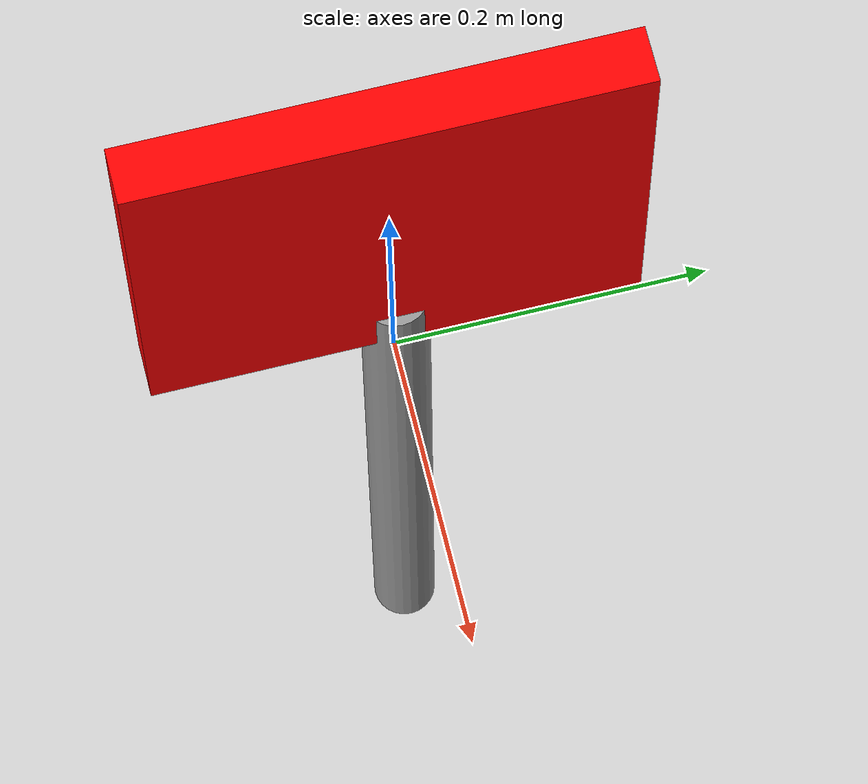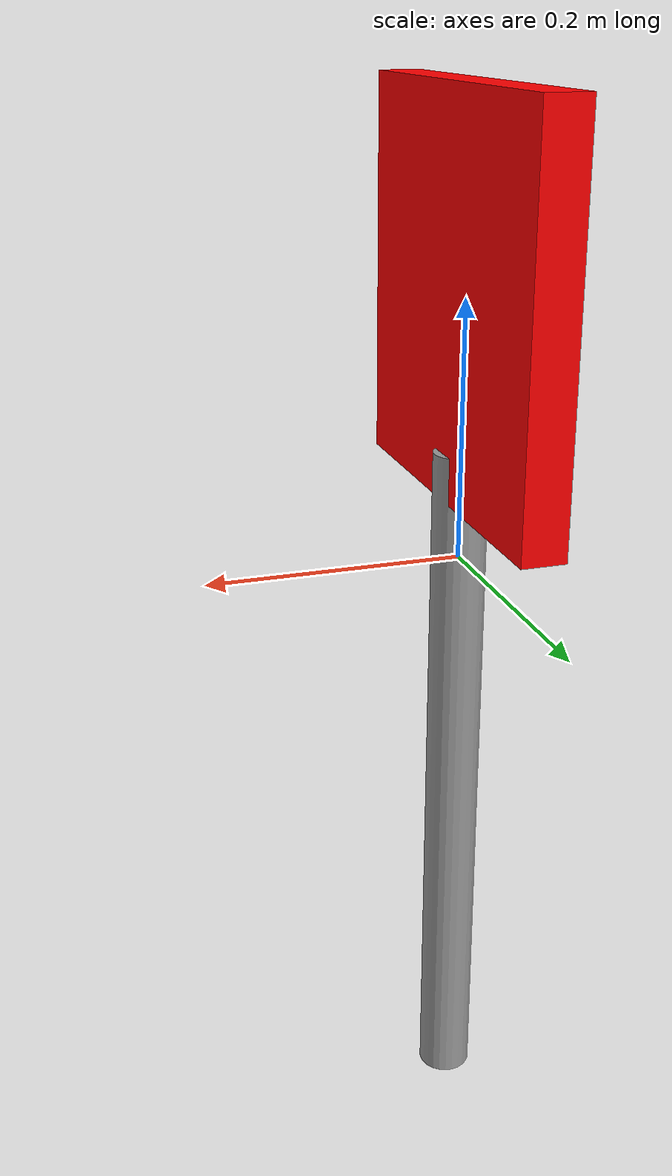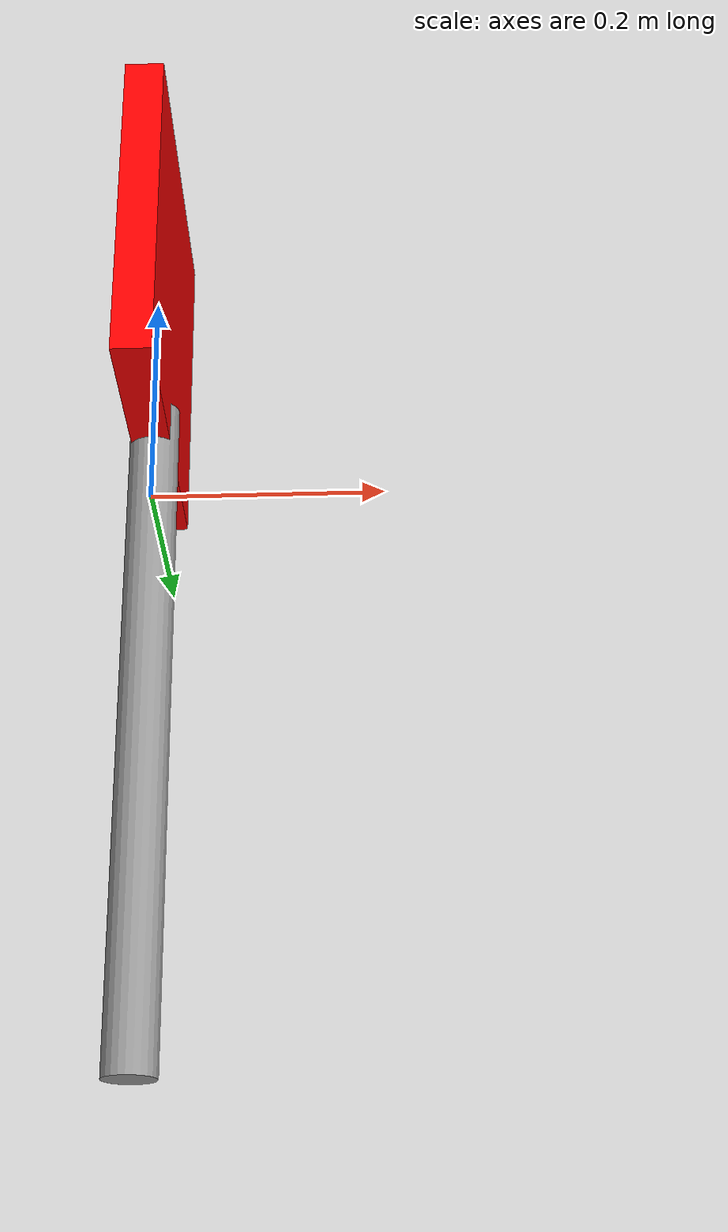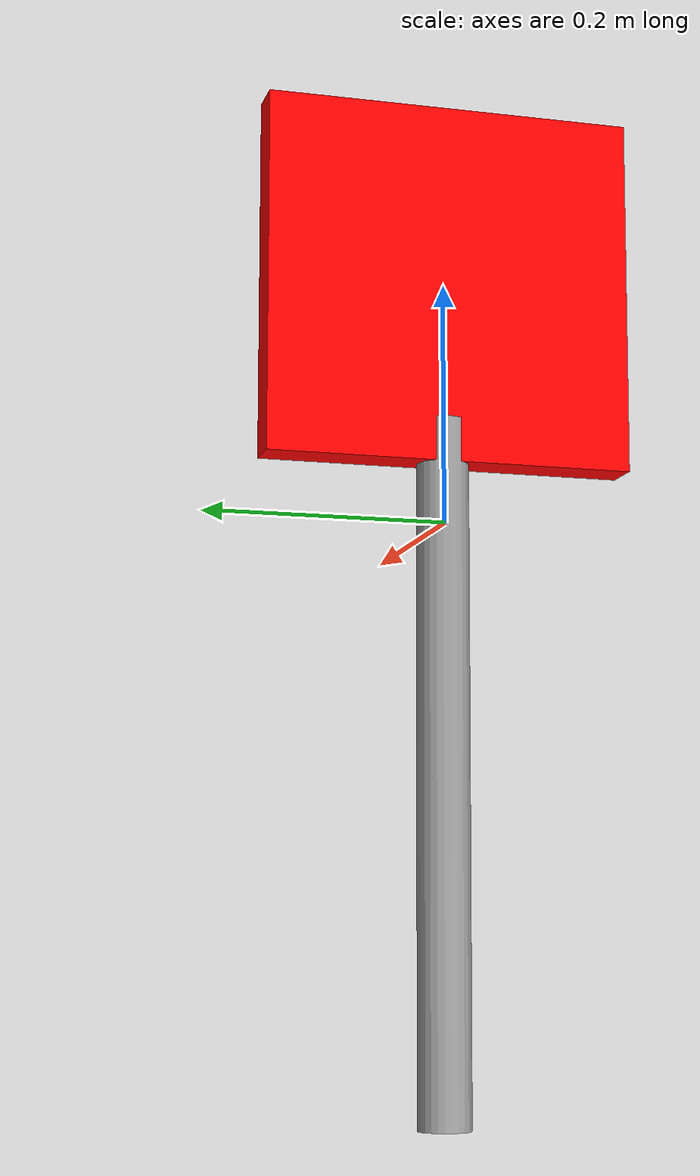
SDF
<?xml version='1.0'?>
<sdf version='1.6'>
  <model name='Stop_Sign'>
    <model name='Untitled'>
      <link name='link_0'>
        <inertial>
          <mass>0.00104194</mass>
          <inertia>
            <ixx>2.80415e-05</ixx>
            <ixy>0</ixy>
            <ixz>0</ixz>
            <iyy>2.80415e-05</iyy>
            <iyz>0</iyz>
            <izz>2.39872e-07</izz>
          </inertia>
          <pose frame=''>0 0 0 0 -0 0</pose>
        </inertial>
        <pose frame=''>0.000872 0.001297 -0.19832 0 -0 0</pose>
        <visual name='visual'>
          <pose frame=''>0 0 0 0 -0 0</pose>
          <geometry>
            <cylinder>
              <radius>0.0214577</radius>
              <length>0.567073</length>
            </cylinder>
          </geometry>
          <material>
            <lighting>1</lighting>
            <script>
              <uri>file://media/materials/scripts/gazebo.material</uri>
              <name>Gazebo/Grey</name>
            </script>
          </material>
          <transparency>0</transparency>
          <cast_shadows>1</cast_shadows>
        </visual>
        <collision name='collision'>
          <laser_retro>0</laser_retro>
          <max_contacts>10</max_contacts>
          <pose frame=''>0 0 0 0 -0 0</pose>
          <geometry>
            <cylinder>
              <radius>0.021458</radius>
              <length>0.567073</length>
            </cylinder>
          </geometry>
          <surface>
            <friction>
              <ode>
                <mu>1</mu>
                <mu2>1</mu2>
                <fdir1>0 0 0</fdir1>
                <slip1>0</slip1>
                <slip2>0</slip2>
              </ode>
              <torsional>
                <coefficient>1</coefficient>
                <patch_radius>0</patch_radius>
                <surface_radius>0</surface_radius>
                <use_patch_radius>1</use_patch_radius>
                <ode>
                  <slip>0</slip>
                </ode>
              </torsional>
            </friction>
            <bounce>
              <restitution_coefficient>0</restitution_coefficient>
              <threshold>1e+06</threshold>
            </bounce>
            <contact>
              <collide_without_contact>0</collide_without_contact>
              <collide_without_contact_bitmask>1</collide_without_contact_bitmask>
              <collide_bitmask>1</collide_bitmask>
              <ode>
                <soft_cfm>0</soft_cfm>
                <soft_erp>0.2</soft_erp>
                <kp>1e+13</kp>
                <kd>1</kd>
                <max_vel>0.01</max_vel>
                <min_depth>0</min_depth>
              </ode>
              <bullet>
                <split_impulse>1</split_impulse>
                <split_impulse_penetration_threshold>-0.01</split_impulse_penetration_threshold>
                <soft_cfm>0</soft_cfm>
                <soft_erp>0.2</soft_erp>
                <kp>1e+13</kp>
                <kd>1</kd>
              </bullet>
            </contact>
          </surface>
        </collision>
      </link>
      <link name='link_1'>
        <inertial>
          <mass>0.00313174</mass>
          <inertia>
            <ixx>4.796e-05</ixx>
            <ixy>0</ixy>
            <ixz>0</ixz>
            <iyy>2.372e-05</iyy>
            <iyz>0</iyz>
            <izz>2.485e-05</izz>
          </inertia>
          <pose frame=''>0 0 0 0 -0 0</pose>
        </inertial>
        <pose frame=''>-0.000876 -0.001297 0.19832 0 -0 0</pose>
        <gravity>1</gravity>
        <self_collide>0</self_collide>
        <kinematic>0</kinematic>
        <enable_wind>0</enable_wind>
        <visual name='visual'>
          <pose frame=''>0 0 0 0 -0 0</pose>
          <geometry>
            <box>
              <size>0.034001 0.306689 0.299524</size>
            </box>
          </geometry>
          <material>
            <lighting>1</lighting>
            <script>
              <uri>file://media/materials/scripts/gazebo.material</uri>
              <name>Gazebo/Grey</name>
            </script>
            <ambient>1 0 0 0</ambient>
            <shader type='vertex'>
              <normal_map>__default__</normal_map>
            </shader>
            <diffuse>0.7 0.7 0.7 1</diffuse>
            <specular>0.01 0.01 0.01 1</specular>
            <emissive>0 0 0 1</emissive>
          </material>
          <transparency>0</transparency>
          <cast_shadows>1</cast_shadows>
        </visual>
        <collision name='collision'>
          <laser_retro>0</laser_retro>
          <max_contacts>10</max_contacts>
          <pose frame=''>0 0 0 0 -0 0</pose>
          <geometry>
            <box>
              <size>0.034001 0.306689 0.299524</size>
            </box>
          </geometry>
          <surface>
            <friction>
              <ode>
                <mu>1</mu>
                <mu2>1</mu2>
                <fdir1>0 0 0</fdir1>
                <slip1>0</slip1>
                <slip2>0</slip2>
              </ode>
              <torsional>
                <coefficient>1</coefficient>
                <patch_radius>0</patch_radius>
                <surface_radius>0</surface_radius>
                <use_patch_radius>1</use_patch_radius>
                <ode>
                  <slip>0</slip>
                </ode>
              </torsional>
            </friction>
            <bounce>
              <restitution_coefficient>0</restitution_coefficient>
              <threshold>1e+06</threshold>
            </bounce>
            <contact>
              <collide_without_contact>0</collide_without_contact>
              <collide_without_contact_bitmask>1</collide_without_contact_bitmask>
              <collide_bitmask>1</collide_bitmask>
              <ode>
                <soft_cfm>0</soft_cfm>
                <soft_erp>0.2</soft_erp>
                <kp>1e+13</kp>
                <kd>1</kd>
                <max_vel>0.01</max_vel>
                <min_depth>0</min_depth>
              </ode>
              <bullet>
                <split_impulse>1</split_impulse>
                <split_impulse_penetration_threshold>-0.01</split_impulse_penetration_threshold>
                <soft_cfm>0</soft_cfm>
                <soft_erp>0.2</soft_erp>
                <kp>1e+13</kp>
                <kd>1</kd>
              </bullet>
            </contact>
          </surface>
        </collision>
      </link>
      <static>0</static>
      <allow_auto_disable>1</allow_auto_disable>
      <pose frame=''>2e-06 0 -0 0 -0 0</pose>
    </model>
    <static>1</static>
    <allow_auto_disable>1</allow_auto_disable>
  </model>
</sdf>
